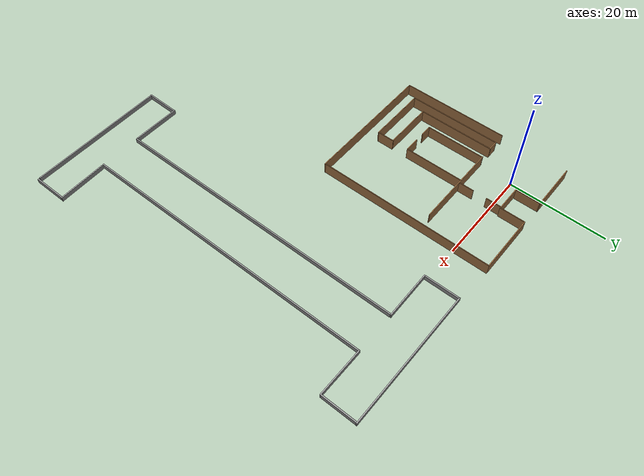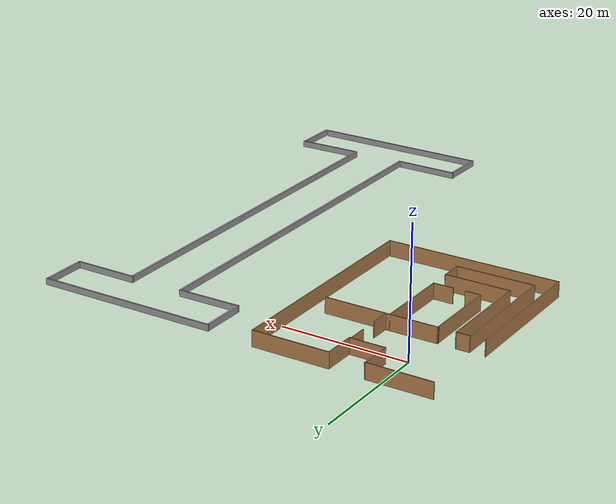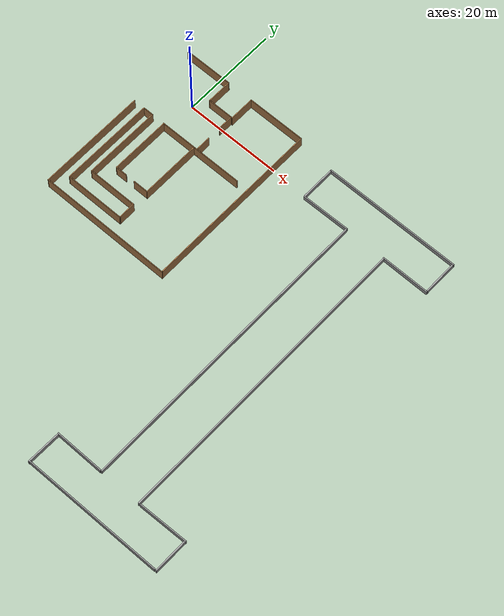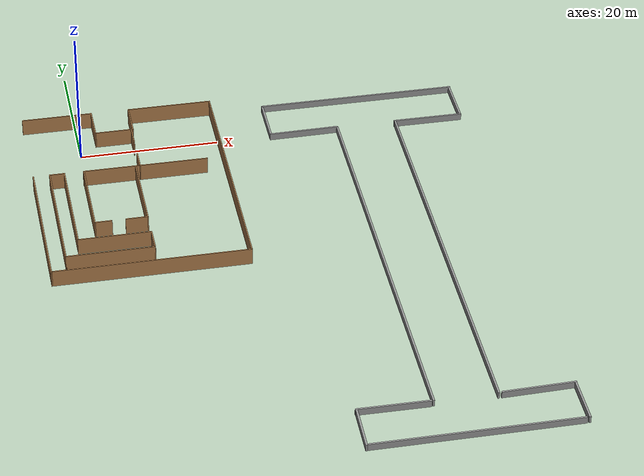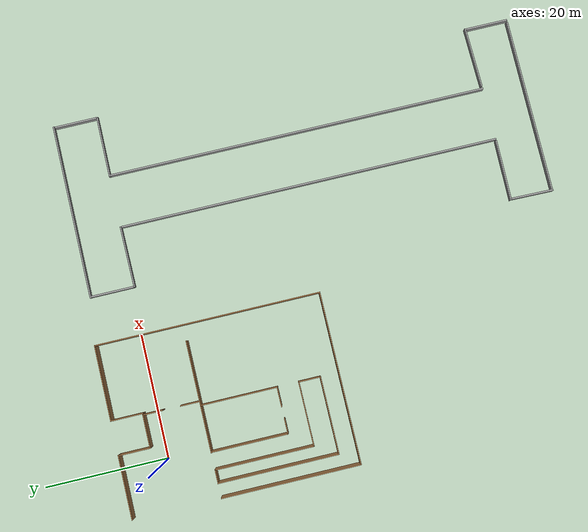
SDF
<sdf version="1.7">
 <world name="default">
  <model name="wall10">
   <pose>3.93507 3.6415 0 0 -0 0</pose>
   <link name="Wall_36">
    <collision name="Wall_36_Collision">
     <geometry><box><size>5.5 0.15 2.5</size></box></geometry>
     <pose>0 0 1.25 0 -0 0</pose>
    </collision>
    <visual name="Wall_36_Visual">
     <pose>0 0 1.25 0 -0 0</pose>
     <geometry><box><size>5.5 0.15 2.5</size></box></geometry>
     <material>
      <script><uri>file://media/materials/scripts/gazebo.material</uri><name>Gazebo/Wood</name></script>
      <ambient>1 1 1 1</ambient>
     </material>
     <meta><layer>0</layer></meta>
    </visual>
    <pose>1.18507 -1.53348 0 0 -0 6e-06</pose>
   </link>
   <link name="Wall_38">
    <collision name="Wall_38_Collision">
     <geometry><box><size>5.25 0.15 2.5</size></box></geometry>
     <pose>0 0 1.25 0 -0 0</pose>
    </collision>
    <visual name="Wall_38_Visual">
     <pose>0 0 1.25 0 -0 0</pose>
     <geometry><box><size>5.25 0.15 2.5</size></box></geometry>
     <material>
      <script><uri>file://media/materials/scripts/gazebo.material</uri><name>Gazebo/Wood</name></script>
      <ambient>1 1 1 1</ambient>
     </material>
     <meta><layer>0</layer></meta>
    </visual>
    <pose>-1.49007 1.0165 0 0 -0 1.5708</pose>
   </link>
   <static>1</static>
  </model>
  <model name="bigwall1">
   <pose>10.06 -11.092 0 0 -0 0</pose>
   <link name="Wall_40">
    <collision name="Wall_40_Collision">
     <geometry><box><size>5.25 0.15 2.5</size></box></geometry>
     <pose>0 0 1.25 0 -0 0</pose>
    </collision>
    <visual name="Wall_40_Visual">
     <pose>0 0 1.25 0 -0 0</pose>
     <geometry><box><size>5.25 0.15 2.5</size></box></geometry>
     <material>
      <script><uri>file://media/materials/scripts/gazebo.material</uri><name>Gazebo/Wood</name></script>
      <ambient>1 1 1 1</ambient>
     </material>
     <meta><layer>0</layer></meta>
    </visual>
    <pose>-2.115 15.75 0 0 -0 1.5708</pose>
   </link>
   <link name="Wall_42">
    <collision name="Wall_42_Collision">
     <geometry><box><size>12.25 0.15 2.5</size></box></geometry>
     <pose>0 0 1.25 0 -0 0</pose>
    </collision>
    <visual name="Wall_42_Visual">
     <pose>0 0 1.25 0 -0 0</pose>
     <geometry><box><size>12.25 0.15 2.5</size></box></geometry>
     <material>
      <script><uri>file://media/materials/scripts/gazebo.material</uri><name>Gazebo/Wood</name></script>
      <ambient>1 1 1 1</ambient>
     </material>
     <meta><layer>0</layer></meta>
    </visual>
    <pose>3.935 18.3 0 0 -0 0</pose>
   </link>
   <link name="Wall_49">
    <collision name="Wall_49_Collision">
     <geometry><box><size>36.75 0.15 2.5</size></box></geometry>
     <pose>0 0 1.25 0 -0 0</pose>
    </collision>
    <visual name="Wall_49_Visual">
     <pose>0 0 1.25 0 -0 0</pose>
     <geometry><box><size>36.75 0.15 2.5</size></box></geometry>
     <material>
      <script><uri>file://media/materials/scripts/gazebo.material</uri><name>Gazebo/Wood</name></script>
      <ambient>1 1 1 1</ambient>
     </material>
     <meta><layer>0</layer></meta>
    </visual>
    <pose>9.985 0 0 0 -0 -1.5708</pose>
   </link>
   <static>1</static>
  </model>
  <model name="wall_40">
   <pose>-2.605 3.6415 0 0 -0 0</pose>
   <link name="Wall_96">
    <collision name="Wall_96_Collision">
     <geometry><box><size>10.25 0.15 2.5</size></box></geometry>
     <pose>0 0 1.25 0 -0 0</pose>
    </collision>
    <visual name="Wall_96_Visual">
     <pose>0 0 1.25 0 -0 0</pose>
     <geometry><box><size>10.25 0.15 2.5</size></box></geometry>
     <material>
      <script><uri>file://media/materials/scripts/gazebo.material</uri><name>Gazebo/Wood</name></script>
      <ambient>1 1 1 1</ambient>
     </material>
     <meta><layer>0</layer></meta>
    </visual>
    <pose>0 3.5665 0 0 -0 3.14159</pose>
   </link>
   <static>1</static>
  </model>
  <model name="WALL_C">
   <pose>6.195 -14.7335 0 0 -0 0</pose>
   <link name="Wall_98">
    <collision name="Wall_98_Collision">
     <geometry><box><size>27.85 0.15 2.5</size></box></geometry>
     <pose>0 0 1.25 0 -0 0</pose>
    </collision>
    <visual name="Wall_98_Visual">
     <pose>0 0 1.25 0 -0 0</pose>
     <geometry><box><size>27.85 0.15 2.5</size></box></geometry>
     <material>
      <script><uri>file://media/materials/scripts/gazebo.material</uri><name>Gazebo/Wood</name></script>
      <ambient>1 1 1 1</ambient>
     </material>
     <meta><layer>0</layer></meta>
    </visual>
    <pose>-0 -14.6585 0 0 -0 3.14159</pose>
   </link>
   <static>1</static>
  </model>
  <model name="WALL_D">
   <pose>-3.865 -14.7335 0 0 -0 0</pose>
   <link name="Wall_100">
    <collision name="Wall_100_Collision">
     <geometry><box><size>22.5 0.15 2.5</size></box></geometry>
     <pose>0 0 1.25 0 -0 0</pose>
    </collision>
    <visual name="Wall_100_Visual">
     <pose>0 0 1.25 0 -0 0</pose>
     <geometry><box><size>22.5 0.15 2.5</size></box></geometry>
     <material>
      <script><uri>file://media/materials/scripts/gazebo.material</uri><name>Gazebo/Wood</name></script>
      <ambient>1 1 1 1</ambient>
     </material>
     <meta><layer>0</layer></meta>
    </visual>
    <pose>-3.79 -3.4835 0 0 -0 1.5708</pose>
   </link>
   <static>1</static>
  </model>
  <model name="WALL_G">
   <pose>6.097 -3.5585 0 0 -0 0</pose>
   <link name="Wall_0">
    <collision name="Wall_0_Collision">
     <geometry><box><size>2.15 0.15 2.5</size></box></geometry>
     <pose>0 0 1.25 0 -0 0</pose>
    </collision>
    <visual name="Wall_0_Visual">
     <pose>0 0 1.25 0 -0 0</pose>
     <geometry><box><size>2.15 0.15 2.5</size></box></geometry>
     <material>
      <script><uri>file://media/materials/scripts/gazebo.material</uri><name>Gazebo/Wood</name></script>
      <ambient>1 1 1 1</ambient>
     </material>
     <meta><layer>0</layer></meta>
    </visual>
    <pose>-10.297 -3.4835 0 0 -0 0</pose>
   </link>
   <link name="Wall_9">
    <collision name="Wall_9_Collision">
     <geometry><box><size>18 0.15 2.5</size></box></geometry>
     <pose>0 0 1.25 0 -0 0</pose>
    </collision>
    <visual name="Wall_9_Visual">
     <pose>0 0 1.25 0 -0 0</pose>
     <geometry><box><size>18 0.15 2.5</size></box></geometry>
     <material>
      <script><uri>file://media/materials/scripts/gazebo.material</uri><name>Gazebo/Wood</name></script>
      <ambient>1 1 1 1</ambient>
     </material>
     <meta><layer>0</layer></meta>
    </visual>
    <pose>2.372 -3.4835 0 0 -0 0</pose>
   </link>
   <static>1</static>
  </model>
  <model name="WALL_F">
   <pose>3.885 -2.467 0 0 -0 0</pose>
   <link name="Wall_11">
    <collision name="Wall_11_Collision">
     <geometry><box><size>3.25 0.15 2.5</size></box></geometry>
     <pose>0 0 1.25 0 -0 0</pose>
    </collision>
    <visual name="Wall_11_Visual">
     <pose>0 0 1.25 0 -0 0</pose>
     <geometry><box><size>3.25 0.15 2.5</size></box></geometry>
     <material>
      <script><uri>file://media/materials/scripts/gazebo.material</uri><name>Gazebo/Wood</name></script>
      <ambient>1 1 1 1</ambient>
     </material>
     <meta><layer>0</layer></meta>
    </visual>
    <pose>3.81 -3.025 0 0 -0 1.5708</pose>
   </link>
   <link name="Wall_13">
    <collision name="Wall_13_Collision">
     <geometry><box><size>3.25 0.15 2.5</size></box></geometry>
     <pose>0 0 1.25 0 -0 0</pose>
    </collision>
    <visual name="Wall_13_Visual">
     <pose>0 0 1.25 0 -0 0</pose>
     <geometry><box><size>3.25 0.15 2.5</size></box></geometry>
     <material>
      <script><uri>file://media/materials/scripts/gazebo.material</uri><name>Gazebo/Wood</name></script>
      <ambient>1 1 1 1</ambient>
     </material>
     <meta><layer>0</layer></meta>
    </visual>
    <pose>3.81 3.025 0 0 -0 -1.5708</pose>
   </link>
   <static>1</static>
  </model>
  <model name="WALL_H1">
   <pose>0.875 -13.2335 0 0 -0 0</pose>
   <link name="Wall_21">
    <collision name="Wall_21_Collision">
     <geometry><box><size>19.5 0.15 2.5</size></box></geometry>
     <pose>0 0 1.25 0 -0 0</pose>
    </collision>
    <visual name="Wall_21_Visual">
     <pose>0 0 1.25 0 -0 0</pose>
     <geometry><box><size>19.5 0.15 2.5</size></box></geometry>
     <material>
      <script><uri>file://media/materials/scripts/gazebo.material</uri><name>Gazebo/Wood</name></script>
      <ambient>1 1 1 1</ambient>
     </material>
     <meta><layer>0</layer></meta>
    </visual>
    <pose>-6.175 -3.4835 0 0 -0 -1.5708</pose>
   </link>
   <link name="Wall_23">
    <collision name="Wall_23_Collision">
     <geometry><box><size>12.5 0.15 2.5</size></box></geometry>
     <pose>0 0 1.25 0 -0 0</pose>
    </collision>
    <visual name="Wall_23_Visual">
     <pose>0 0 1.25 0 -0 0</pose>
     <geometry><box><size>12.5 0.15 2.5</size></box></geometry>
     <material>
      <script><uri>file://media/materials/scripts/gazebo.material</uri><name>Gazebo/Wood</name></script>
      <ambient>1 1 1 1</ambient>
     </material>
     <meta><layer>0</layer></meta>
    </visual>
    <pose>1e-06 -13.1585 0 0 -0 0</pose>
   </link>
   <static>1</static>
  </model>
  <model name="WALL_I_1">
   <pose>1.925 -13.2335 0 0 -0 0</pose>
   <link name="Wall_27">
    <collision name="Wall_27_Collision">
     <geometry><box><size>16 0.15 2.5</size></box></geometry>
     <pose>0 0 1.25 0 -0 0</pose>
    </collision>
    <visual name="Wall_27_Visual">
     <pose>0 0 1.25 0 -0 0</pose>
     <geometry><box><size>16 0.15 2.5</size></box></geometry>
     <material>
      <script><uri>file://media/materials/scripts/gazebo.material</uri><name>Gazebo/Wood</name></script>
      <ambient>1 1 1 1</ambient>
     </material>
     <meta><layer>0</layer></meta>
    </visual>
    <pose>-5.125 -1.7335 0 0 -0 -1.5708</pose>
   </link>
   <link name="Wall_30">
    <collision name="Wall_30_Collision">
     <geometry><box><size>10.4 0.15 2.5</size></box></geometry>
     <pose>0 0 1.25 0 -0 0</pose>
    </collision>
    <visual name="Wall_30_Visual">
     <pose>0 0 1.25 0 -0 0</pose>
     <geometry><box><size>10.4 0.15 2.5</size></box></geometry>
     <material>
      <script><uri>file://media/materials/scripts/gazebo.material</uri><name>Gazebo/Wood</name></script>
      <ambient>1 1 1 1</ambient>
     </material>
     <meta><layer>0</layer></meta>
    </visual>
    <pose>0 -9.6585 0 0 -0 0</pose>
   </link>
   <link name="Wall_32">
    <collision name="Wall_32_Collision">
     <geometry><box><size>3.65 0.15 2.5</size></box></geometry>
     <pose>0 0 1.25 0 -0 0</pose>
    </collision>
    <visual name="Wall_32_Visual">
     <pose>0 0 1.25 0 -0 0</pose>
     <geometry><box><size>3.65 0.15 2.5</size></box></geometry>
     <material>
      <script><uri>file://media/materials/scripts/gazebo.material</uri><name>Gazebo/Wood</name></script>
      <ambient>1 1 1 1</ambient>
     </material>
     <meta><layer>0</layer></meta>
    </visual>
    <pose>5.125 -11.4085 0 0 -0 -1.5708</pose>
   </link>
   <static>1</static>
  </model>
  <model name="WALL_T1">
   <pose>3.325 -9.7336 0 0 -0 0</pose>
   <link name="Wall_35">
    <collision name="Wall_35_Collision">
     <geometry><box><size>12.5004 0.15 2.5</size></box></geometry>
     <pose>0 0 1.25 0 -0 0</pose>
    </collision>
    <visual name="Wall_35_Visual">
     <pose>0 0 1.25 0 -0 0</pose>
     <geometry><box><size>12.5004 0.15 2.5</size></box></geometry>
     <material>
      <script><uri>file://media/materials/scripts/gazebo.material</uri><name>Gazebo/Wood</name></script>
      <ambient>1 1 1 1</ambient>
     </material>
     <meta><layer>0</layer></meta>
    </visual>
    <pose>-3.725 -3.4834 0 0 -0 -1.5708</pose>
   </link>
   <link name="Wall_40">
    <collision name="Wall_40_Collision">
     <geometry><box><size>2.5 0.15 2.5</size></box></geometry>
     <pose>0 0 1.25 0 -0 0</pose>
    </collision>
    <visual name="Wall_40_Visual">
     <pose>0 0 1.25 0 -0 0</pose>
     <geometry><box><size>2.5 0.15 2.5</size></box></geometry>
     <material>
      <script><uri>file://media/materials/scripts/gazebo.material</uri><name>Gazebo/Wood</name></script>
      <ambient>1 1 1 1</ambient>
     </material>
     <meta><layer>0</layer></meta>
    </visual>
    <pose>-2.55 -9.6584 0 0 -0 0</pose>
   </link>
   <link name="Wall_42">
    <collision name="Wall_42_Collision">
     <geometry><box><size>3.235 0.15 2.5</size></box></geometry>
     <pose>0 0 1.25 0 -0 0</pose>
    </collision>
    <visual name="Wall_42_Visual">
     <pose>0 0 1.25 0 -0 0</pose>
     <geometry><box><size>3.235 0.15 2.5</size></box></geometry>
     <material>
      <script><uri>file://media/materials/scripts/gazebo.material</uri><name>Gazebo/Wood</name></script>
      <ambient>1 1 1 1</ambient>
     </material>
     <meta><layer>0</layer></meta>
    </visual>
    <pose>2.1825 -9.6584 0 0 -0 0</pose>
   </link>
   <link name="Wall_44">
    <collision name="Wall_44_Collision">
     <geometry><box><size>12.5 0.15 2.5</size></box></geometry>
     <pose>0 0 1.25 0 -0 0</pose>
    </collision>
    <visual name="Wall_44_Visual">
     <pose>0 0 1.25 0 -0 0</pose>
     <geometry><box><size>12.5 0.15 2.5</size></box></geometry>
     <material>
      <script><uri>file://media/materials/scripts/gazebo.material</uri><name>Gazebo/Wood</name></script>
      <ambient>1 1 1 1</ambient>
     </material>
     <meta><layer>0</layer></meta>
    </visual>
    <pose>3.725 -3.4834 0 0 -0 1.5708</pose>
   </link>
   <static>1</static>
  </model>
  <model name="unit_box">
   <pose>42.1295 6.56188 0.513382 0 -0 0.000349</pose>
   <link name="link">
    <inertial>
     <mass>1</mass>
     <inertia>
      <ixx>0.166667</ixx>
      <ixy>0</ixy>
      <ixz>0</ixz>
      <iyy>0.166667</iyy>
      <iyz>0</iyz>
      <izz>0.166667</izz>
     </inertia>
    </inertial>
    <collision name="collision"><geometry><box><size>28.8041 0.235025 1</size></box></geometry></collision>
    <visual name="visual">
     <geometry><box><size>28.8041 0.235025 1</size></box></geometry>
     <material>
      <script><name>Gazebo/Grey</name><uri>file://media/materials/scripts/gazebo.material</uri></script>
     </material>
    </visual>
   </link>
  </model>
  <model name="unit_box_0">
   <pose>56.3424 2.93445 0.513382 0 -0 -8e-06</pose>
   <link name="link">
    <inertial>
     <mass>1</mass>
     <inertia>
      <ixx>0.166667</ixx>
      <ixy>0</ixy>
      <ixz>0</ixz>
      <iyy>0.166667</iyy>
      <iyz>0</iyz>
      <izz>0.166667</izz>
     </inertia>
    </inertial>
    <collision name="collision"><geometry><box><size>0.276088 6.97492 1</size></box></geometry></collision>
    <visual name="visual">
     <geometry><box><size>0.276088 6.97492 1</size></box></geometry>
     <material>
      <script><name>Gazebo/Grey</name><uri>file://media/materials/scripts/gazebo.material</uri></script>
     </material>
    </visual>
   </link>
  </model>
  <model name="unit_box_clone">
   <pose>51.4101 -0.672909 0.513382 2e-06 -0 -0.005082</pose>
   <link name="link">
    <inertial>
     <mass>1</mass>
     <inertia>
      <ixx>0.166667</ixx>
      <ixy>0</ixy>
      <ixz>0</ixz>
      <iyy>0.166667</iyy>
      <iyz>0</iyz>
      <izz>0.166667</izz>
     </inertia>
    </inertial>
    <collision name="collision"><geometry><box><size>10.1262 0.235025 1</size></box></geometry></collision>
    <visual name="visual">
     <geometry><box><size>10.1262 0.235025 1</size></box></geometry>
     <material>
      <script><name>Gazebo/Grey</name><uri>file://media/materials/scripts/gazebo.material</uri></script>
     </material>
    </visual>
   </link>
  </model>
  <model name="unit_box_0_clone">
   <pose>27.8823 2.91818 0.513382 0 -0 -0.000196</pose>
   <link name="link">
    <inertial>
     <mass>1</mass>
     <inertia>
      <ixx>0.166667</ixx>
      <ixy>0</ixy>
      <ixz>0</ixz>
      <iyy>0.166667</iyy>
      <iyz>0</iyz>
      <izz>0.166667</izz>
     </inertia>
    </inertial>
    <collision name="collision"><geometry><box><size>0.276088 6.97492 1</size></box></geometry></collision>
    <visual name="visual">
     <geometry><box><size>0.276088 6.97492 1</size></box></geometry>
     <material>
      <script><name>Gazebo/Grey</name><uri>file://media/materials/scripts/gazebo.material</uri></script>
     </material>
    </visual>
   </link>
  </model>
  <model name="unit_box_clone_clone">
   <pose>32.8374 -0.639661 0.513382 0 -0 0.00982</pose>
   <link name="link">
    <inertial>
     <mass>1</mass>
     <inertia>
      <ixx>0.166667</ixx>
      <ixy>0</ixy>
      <ixz>0</ixz>
      <iyy>0.166667</iyy>
      <iyz>0</iyz>
      <izz>0.166667</izz>
     </inertia>
    </inertial>
    <collision name="collision"><geometry><box><size>10.1262 0.235025 1</size></box></geometry></collision>
    <visual name="visual">
     <geometry><box><size>10.1262 0.235025 1</size></box></geometry>
     <material>
      <script><name>Gazebo/Grey</name><uri>file://media/materials/scripts/gazebo.material</uri></script>
     </material>
    </visual>
   </link>
  </model>
  <model name="unit_box_0_clone_0_clone">
   <pose>37.8329 -32.0544 0.513374 4e-06 8.1e-05 0.000526</pose>
   <link name="link">
    <inertial>
     <mass>1</mass>
     <inertia>
      <ixx>0.166667</ixx>
      <ixy>0</ixy>
      <ixz>0</ixz>
      <iyy>0.166667</iyy>
      <iyz>0</iyz>
      <izz>0.166667</izz>
     </inertia>
    </inertial>
    <collision name="collision"><geometry><box><size>0.276088 62.6754 1</size></box></geometry></collision>
    <visual name="visual">
     <geometry><box><size>0.276088 62.6754 1</size></box></geometry>
     <material>
      <script><name>Gazebo/Grey</name><uri>file://media/materials/scripts/gazebo.material</uri></script>
     </material>
    </visual>
   </link>
  </model>
  <model name="unit_box_0_clone_0_clone_clone">
   <pose>46.5003 -32.1038 0.513369 3e-06 8.5e-05 -0.000283</pose>
   <link name="link">
    <inertial>
     <mass>1</mass>
     <inertia>
      <ixx>0.166667</ixx>
      <ixy>0</ixy>
      <ixz>0</ixz>
      <iyy>0.166667</iyy>
      <iyz>0</iyz>
      <izz>0.166667</izz>
     </inertia>
    </inertial>
    <collision name="collision"><geometry><box><size>0.276088 62.6753 1</size></box></geometry></collision>
    <visual name="visual">
     <geometry><box><size>0.276088 62.6753 1</size></box></geometry>
     <material>
      <script><name>Gazebo/Grey</name><uri>file://media/materials/scripts/gazebo.material</uri></script>
     </material>
    </visual>
   </link>
  </model>
  <model name="unit_box_clone_clone_clone">
   <pose>32.5812 -63.282 0.513382 -0 -0 -0.010939</pose>
   <link name="link">
    <inertial>
     <mass>1</mass>
     <inertia>
      <ixx>0.166667</ixx>
      <ixy>0</ixy>
      <ixz>0</ixz>
      <iyy>0.166667</iyy>
      <iyz>0</iyz>
      <izz>0.166667</izz>
     </inertia>
    </inertial>
    <collision name="collision"><geometry><box><size>10.1262 0.235025 1</size></box></geometry></collision>
    <visual name="visual">
     <geometry><box><size>10.1262 0.235025 1</size></box></geometry>
     <material>
      <script><name>Gazebo/Grey</name><uri>file://media/materials/scripts/gazebo.material</uri></script>
     </material>
    </visual>
   </link>
  </model>
  <model name="unit_box_clone_clone_clone_0">
   <pose>51.9326 -63.2071 0.513382 -1e-06 0 0.023297</pose>
   <link name="link">
    <inertial>
     <mass>1</mass>
     <inertia>
      <ixx>0.166667</ixx>
      <ixy>0</ixy>
      <ixz>0</ixz>
      <iyy>0.166667</iyy>
      <iyz>0</iyz>
      <izz>0.166667</izz>
     </inertia>
    </inertial>
    <collision name="collision"><geometry><box><size>10.1262 0.235025 1</size></box></geometry></collision>
    <visual name="visual">
     <geometry><box><size>10.1262 0.235025 1</size></box></geometry>
     <material>
      <script><name>Gazebo/Grey</name><uri>file://media/materials/scripts/gazebo.material</uri></script>
     </material>
    </visual>
   </link>
  </model>
  <model name="unit_box_0_clone_clone">
   <pose>27.6231 -66.8345 0.513382 0 0 -0.019074</pose>
   <link name="link">
    <inertial>
     <mass>1</mass>
     <inertia>
      <ixx>0.166667</ixx>
      <ixy>0</ixy>
      <ixz>0</ixz>
      <iyy>0.166667</iyy>
      <iyz>0</iyz>
      <izz>0.166667</izz>
     </inertia>
    </inertial>
    <collision name="collision"><geometry><box><size>0.276088 6.97492 1</size></box></geometry></collision>
    <visual name="visual">
     <geometry><box><size>0.276088 6.97492 1</size></box></geometry>
     <material>
      <script><name>Gazebo/Grey</name><uri>file://media/materials/scripts/gazebo.material</uri></script>
     </material>
    </visual>
   </link>
  </model>
  <model name="unit_box_0_clone_clone_0">
   <pose>56.8222 -66.7014 0.513384 3e-06 1.7e-05 -0.000364</pose>
   <link name="link">
    <inertial>
     <mass>1</mass>
     <inertia>
      <ixx>0.166667</ixx>
      <ixy>0</ixy>
      <ixz>0</ixz>
      <iyy>0.166667</iyy>
      <iyz>0</iyz>
      <izz>0.166667</izz>
     </inertia>
    </inertial>
    <collision name="collision"><geometry><box><size>0.276088 6.97492 1</size></box></geometry></collision>
    <visual name="visual">
     <geometry><box><size>0.276088 6.97492 1</size></box></geometry>
     <material>
      <script><name>Gazebo/Grey</name><uri>file://media/materials/scripts/gazebo.material</uri></script>
     </material>
    </visual>
   </link>
  </model>
  <model name="unit_box_clone_0">
   <pose>42.1025 -70.1312 0.513364 0.000111 3e-06 0.0004</pose>
   <link name="link">
    <inertial>
     <mass>1</mass>
     <inertia>
      <ixx>0.166667</ixx>
      <ixy>0</ixy>
      <ixz>0</ixz>
      <iyy>0.166667</iyy>
      <iyz>0</iyz>
      <izz>0.166667</izz>
     </inertia>
    </inertial>
    <collision name="collision"><geometry><box><size>28.8041 0.235025 1</size></box></geometry></collision>
    <visual name="visual">
     <geometry><box><size>28.8041 0.235025 1</size></box></geometry>
     <material>
      <script><name>Gazebo/Grey</name><uri>file://media/materials/scripts/gazebo.material</uri></script>
     </material>
    </visual>
   </link>
  </model>
 </world>
</sdf>
